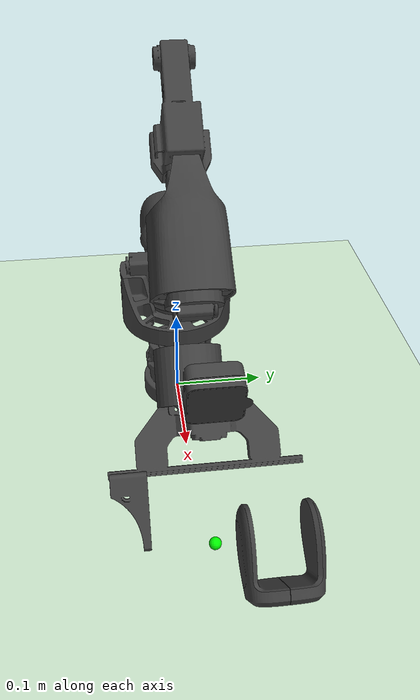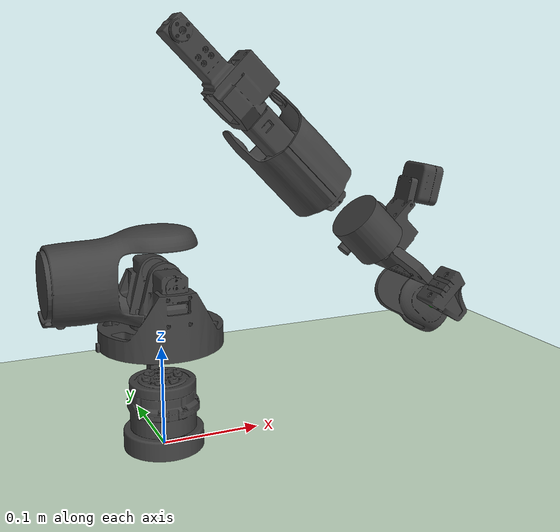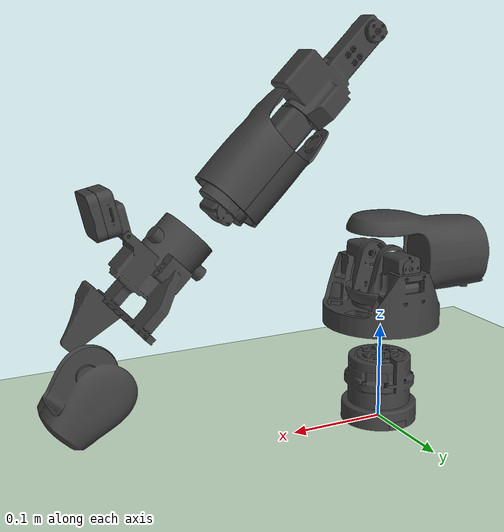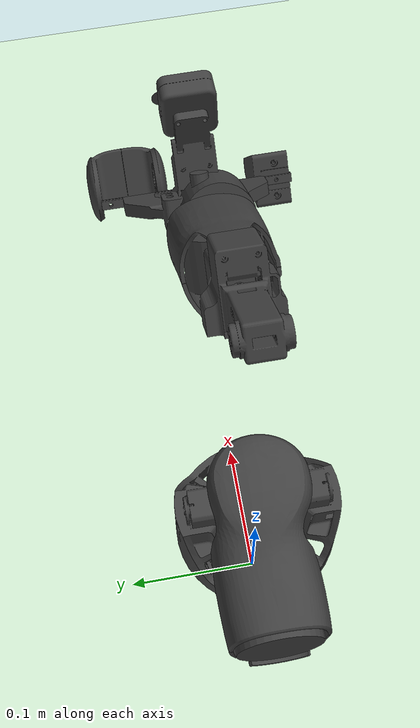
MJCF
<mujoco model="alicia_D_v5_5">
  <compiler angle="radian" meshdir="../meshes/"/>
  <statistic center="-0.012496 0.000424702 0.622672" extent="1.93611" meansize="0.179951" />
  <visual>
    <scale jointwidth="0.02" framelength="0.3" framewidth="0.01" />
  </visual>
  <default>
      <joint armature="0.001" damping="0.01" frictionloss="0.001" limited="true" margin="0.001" type="hinge"/>
      <geom material="black"/>
  </default>
  <asset>
    <mesh name="base_link" file="base_link.STL"/>
    <mesh name="Link1" file="Link1.STL"/>
    <mesh name="Link2" file="Link2.STL"/>
    <mesh name="Link3" file="Link3.STL"/>
    <mesh name="Link4" file="Link4.STL"/>
    <mesh name="Link5" file="Link5.STL"/>
    <mesh name="Link6" file="Link6.STL"/>
    <mesh name="Grasp_base" file="Grasp_base.STL"/>
    <mesh name="Link7" file="Link7.STL"/>
    <mesh name="Link8" file="Link8.STL"/>
    <texture builtin="gradient" height="100" rgb1=".4 .5 .6" rgb2="0 0 0" type="skybox" width="100"/>
    <texture builtin="checker" height="100" name="texplane" rgb1="1 1 1" rgb2=".8 .9 1" type="2d"
              width="100"/>
    <material name="MatPlane" reflectance="0.5" texrepeat="1 1" texture="texplane" texuniform="true"/>
    <material name="white" rgba="1 1 1 1" shininess="0.5" specular="0.1"/>
    <material name="black" rgba="0.25 0.25 0.25 1" shininess="0.2" specular="0.05"/>
    <material name="invisible" rgba="1 1 1 0" shininess="0" specular="0"/>
  </asset>

  <worldbody>
   <geom conaffinity="1" condim="3" contype="1" friction="1 .1 .1" group="2" material="MatPlane" name="floor"
          pos="0 0 0" rgba="0.8 0.9 0.8 1" size="500 500 0.125" type="plane"/>
    <light castshadow="false" cutoff="100" diffuse="1 1 1" dir="-0 0 -1.3" directional="true" exponent="1"
            pos="0 0 1.3" specular=".1 .1 .1"/>
    <body name="base_link" pos="0 0 0" quat="1 0 0 0">
      <geom type="mesh" contype="0" conaffinity="0" group="1" density="0"  mesh="base_link"/>
      <geom type="mesh"  mesh="base_link"/>
      <body name="Link1" pos="0 0 0.1295">
        <inertial pos="-0.000232391 -1.30049e-05 0.00272123" quat="0.494444 0.501273 -0.501535 0.502706" mass="0.193725" diaginertia="0.000339765 0.000258314 0.000149221"/>
        <joint name="Joint1" pos="0 0 0" axis="0 0 1" range="-2.16 2.16" actuatorfrcrange="-12 12"/>
        <geom type="mesh" contype="0" conaffinity="0" group="1" density="0"  mesh="Link1"/>
        <geom type="mesh"  mesh="Link1"/>
        <body name="Link2" pos="0 -5e-05 0.04287" quat="0.499998 0.5 -0.5 0.500002">
          <inertial pos="0.149948 -0.000737331 -0.000614553" quat="0.527603 0.470175 0.472922 0.526226" mass="0.216765" diaginertia="0.000226233 0.000143401 0.000128092"/>
          <joint name="Joint2" pos="0 0 0" axis="0 0 1" range="-1.57 1.57" actuatorfrcrange="-12 12"/>
          <geom type="mesh" contype="0" conaffinity="0" group="1" density="0"  mesh="Link2"/>
          <geom type="mesh"  mesh="Link2"/>
          <body name="Link3" pos="0.22367 -0.022592 0" quat="0.382681 0 0 -0.923881">
            <inertial pos="0.0557863 0.00248144 0.000269721" quat="-0.0276295 0.669803 0.007161 0.74199" mass="0.0845576" diaginertia="8.09971e-05 7.62965e-05 2.81294e-05"/>
            <joint name="Joint3" pos="0 0 0" axis="0 0 1" range="-0.5 2.35619" actuatorfrcrange="-12 12"/>
            <geom type="mesh" contype="0" conaffinity="0" group="1" density="0"  mesh="Link3"/>
            <geom type="mesh"  mesh="Link3"/>
            <body name="Link4" pos="0.0986 -0.00211 0.0002" quat="0.499998 -0.5 0.500002 -0.5">
              <inertial pos="0.000298366 -0.000601369 0.066374" quat="0.99997 0.000404214 0.00701296 -0.00329826" mass="0.0653696" diaginertia="7.0311e-05 6.8747e-05 1.68121e-05"/>
              <joint name="Joint4" pos="0 0 0" axis="0 0 -1" range="-3.14 3.14" actuatorfrcrange="-12 12"/>
              <geom type="mesh" contype="0" conaffinity="0" group="1" density="0"  mesh="Link4"/>
              <geom type="mesh"  mesh="Link4"/>
              <body name="Link5" pos="0 0.00015 0.12275" quat="0.707105 0.707108 0 0">
                <inertial pos="-0.0110961 0.0308025 -0.000207575" quat="0.809364 0.00843495 0.0103138 0.587157" mass="0.0463941" diaginertia="2.46438e-05 1.77644e-05 1.6394e-05"/>
                <joint name="Joint5" pos="0 0 0" axis="0 0 1" range="-1.57 1.5" actuatorfrcrange="-12 12"/>
                <geom type="mesh" contype="0" conaffinity="0" group="1" density="0"  mesh="Link5"/>
                <geom type="mesh"  mesh="Link5"/>
                <body name="Link6" pos="-0.00385 0.0573 -0.00035" quat="0.707105 -0.707108 0 0">
                  <inertial pos="-0.0319074 -0.000167766 0.027366" quat="0.322675 0.322765 -0.628921 0.629413" mass="0.120575" diaginertia="9.08499e-05 7.88777e-05 3.47596e-05"/>
                  <joint name="Joint6" pos="0 0 0" axis="0 0 -1" range="-3.14 3.14" actuatorfrcrange="-12 12"/>
                  <geom type="mesh" contype="0" conaffinity="0" group="1" density="0"  mesh="Link6"/>
                  <geom type="mesh"  mesh="Link6"/>
                  <geom type="mesh" contype="0" conaffinity="0" group="1" density="0"  mesh="Grasp_base"/>
                  <geom type="mesh"  mesh="Grasp_base"/>
                  <geom size="0.005" pos="-0.0002 -0.0003 0.13118" contype="0" conaffinity="0" group="1" density="0" rgba="0 1 0 1"/>
                  <body name="Link7" pos="-0.0002 0.050502 0.13118" quat="0.707105 -0.707108 0 0">
                    <inertial pos="2.97088e-08 0.0434088 0.0106597" quat="0.402868 0.581114 -0.581113 0.402878" mass="0.0256461" diaginertia="8.50964e-06 6.4683e-06 4.66071e-06"/>
                    <joint name="left_finger" pos="0 0 0" axis="0 0 1" type="slide" range="-0.05 0" actuatorfrcrange="-5 5"/>
                    <geom type="mesh" contype="0" conaffinity="0" group="1" density="0"  mesh="Link7"/>
                    <geom type="mesh"  mesh="Link7"/>
                  </body>
                  <body name="Link8" pos="-0.0002 -0.050498 0.13118" quat="0.707105 0.707108 0 0">
                    <inertial pos="-2.97088e-08 -0.0434088 0.0106597" quat="0.581113 0.402878 -0.402868 0.581114" mass="0.0256461" diaginertia="8.50964e-06 6.4683e-06 4.66071e-06"/>
                    <joint name="right_finger" pos="0 0 0" axis="0 0 -1" type="slide" range="0 0.05" actuatorfrcrange="-5 5"/>
                    <geom type="mesh" contype="0" conaffinity="0" group="1" density="0"  mesh="Link8"/>
                    <geom type="mesh"  mesh="Link8"/>
                  </body>
                </body>
              </body>
            </body>
          </body>
        </body>
      </body>
    </body>
  </worldbody>
  <actuator>
    <motor joint="Joint1"  gear="100"/>
    <motor joint="Joint2"  gear="100"/>
    <motor joint="Joint3"  gear="100"/>
    <motor joint="Joint4" gear="100"/>
    <motor joint="Joint5"  gear="100"/>
    <motor joint="Joint6" gear="100"/>
    <position joint="left_finger"/>
    <position joint="right_finger"/>
  </actuator>
  <contact>
    <exclude body1="base_link" body2="Link1"/>
    <exclude body1="Link1" body2="Link2"/>
    <exclude body1="Link2" body2="Link3"/>
    <exclude body1="Link3" body2="Link4"/>
    <exclude body1="Link4" body2="Link5"/>
    <exclude body1="Link5" body2="Link6"/>
    <exclude body1="Link6" body2="Link7"/>
    <exclude body1="Link6" body2="Link8"/>
  </contact>
</mujoco>
